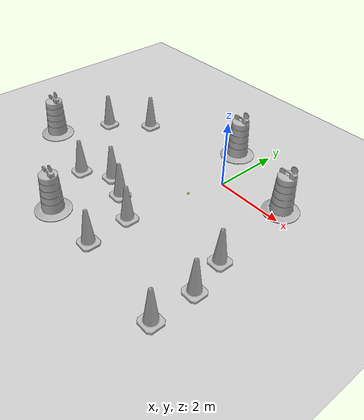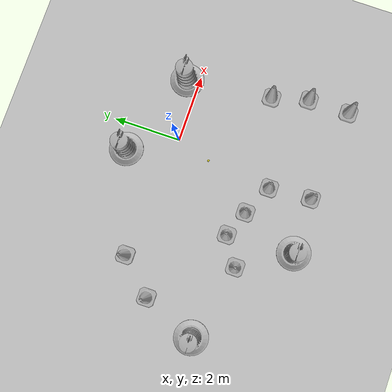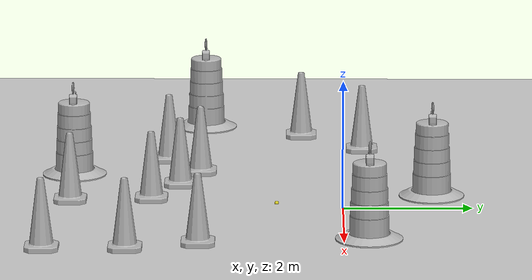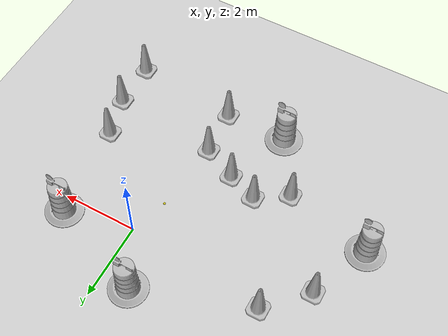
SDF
<sdf version="1.7">
 <world name="default">
  <light name="sun" type="directional">
   <pose>0 0 10 0 -0 0</pose>
   <diffuse>0.8 0.8 0.8 1</diffuse>
   <specular>0.2 0.2 0.2 1</specular>
   <attenuation>
    <range>1000</range>
    <constant>0.9</constant>
    <linear>0.01</linear>
    <quadratic>0.001</quadratic>
   </attenuation>
   <direction>-0.5 0.1 -0.9</direction>
   <spot><inner_angle>0</inner_angle><outer_angle>0</outer_angle><falloff>0</falloff></spot>
  </light>
  <model name="ground_plane">
   <static>1</static>
   <link name="link">
    <collision name="collision">
     <geometry><plane><normal>0 0 1</normal><size>100 100</size></plane></geometry>
     <surface>
      <contact><collide_bitmask>65535</collide_bitmask></contact>
      <friction><ode><mu>100</mu><mu2>50</mu2></ode></friction>
     </surface>
    </collision>
    <visual name="visual">
     <cast_shadows>0</cast_shadows>
     <geometry><plane><normal>0 0 1</normal><size>100 100</size></plane></geometry>
     <material>
      <script><uri>file://media/materials/scripts/gazebo.material</uri><name>Gazebo/Grey</name></script>
     </material>
    </visual>
   </link>
  </model>
  <gravity>0 0 -9.8</gravity>
  <magnetic_field>6e-06 2.3e-05 -4.2e-05</magnetic_field>
  <atmosphere type="adiabatic"/>
  <physics type="ode">
   <max_step_size>0.001</max_step_size>
   <real_time_factor>1</real_time_factor>
   <real_time_update_rate>1000</real_time_update_rate>
  </physics>
  <scene><ambient>0.4 0.4 0.4 1</ambient><background>0.7 0.7 0.7 1</background><shadows>1</shadows></scene>
  <spherical_coordinates>
   <surface_model>EARTH_WGS84</surface_model>
   <latitude_deg>0</latitude_deg>
   <longitude_deg>0</longitude_deg>
   <elevation>0</elevation>
   <heading_deg>0</heading_deg>
  </spherical_coordinates>
  <model name="Construction Barrel">
   <link name="link">
    <inertial>
     <pose>0 0 0.4 0 -0 0</pose>
     <mass>500</mass>
     <inertia><ixx>51.2096</ixx><iyy>51.2096</iyy><izz>25</izz><ixy>0</ixy><ixz>0</ixz><iyz>0</iyz></inertia>
    </inertial>
    <collision name="collision">
     <geometry><mesh><uri>model://construction_barrel/meshes/construction_barrel.dae</uri></mesh></geometry>
    </collision>
    <visual name="visual">
     <geometry><mesh><uri>model://construction_barrel/meshes/construction_barrel.dae</uri></mesh></geometry>
    </visual>
   </link>
   <pose>-0.756325 1.39223 -2e-06 7e-06 -4e-06 -2.7e-05</pose>
  </model>
  <model name="Construction Barrel_0">
   <link name="link">
    <inertial>
     <pose>0 0 0.4 0 -0 0</pose>
     <mass>500</mass>
     <inertia><ixx>51.2096</ixx><iyy>51.2096</iyy><izz>25</izz><ixy>0</ixy><ixz>0</ixz><iyz>0</iyz></inertia>
    </inertial>
    <collision name="collision">
     <geometry><mesh><uri>model://construction_barrel/meshes/construction_barrel.dae</uri></mesh></geometry>
    </collision>
    <visual name="visual">
     <geometry><mesh><uri>model://construction_barrel/meshes/construction_barrel.dae</uri></mesh></geometry>
    </visual>
   </link>
   <pose>1.80013 0.377148 -0 0 0 -2.7e-05</pose>
  </model>
  <model name="Construction Cone">
   <link name="link">
    <collision name="collision">
     <geometry>
      <mesh><scale>10 10 10</scale><uri>model://construction_cone/meshes/construction_cone.dae</uri></mesh>
     </geometry>
    </collision>
    <visual name="visual">
     <geometry>
      <mesh><scale>10 10 10</scale><uri>model://construction_cone/meshes/construction_cone.dae</uri></mesh>
     </geometry>
    </visual>
    <inertial>
     <inertia><ixx>1</ixx><ixy>0</ixy><ixz>0</ixz><iyy>1</iyy><iyz>0</iyz><izz>1</izz></inertia>
     <mass>1</mass>
    </inertial>
   </link>
   <pose>-2.19745 -2.25046 -0 0 -1e-06 0</pose>
  </model>
  <model name="Construction Cone_0">
   <link name="link">
    <collision name="collision">
     <geometry>
      <mesh><scale>10 10 10</scale><uri>model://construction_cone/meshes/construction_cone.dae</uri></mesh>
     </geometry>
    </collision>
    <visual name="visual">
     <geometry>
      <mesh><scale>10 10 10</scale><uri>model://construction_cone/meshes/construction_cone.dae</uri></mesh>
     </geometry>
    </visual>
    <inertial>
     <inertia><ixx>1</ixx><ixy>0</ixy><ixz>0</ixz><iyy>1</iyy><iyz>0</iyz><izz>1</izz></inertia>
     <mass>1</mass>
    </inertial>
   </link>
   <pose>-1.40494 -2.55135 -0 0 -1e-06 0</pose>
  </model>
  <model name="Construction Cone_1">
   <link name="link">
    <collision name="collision">
     <geometry>
      <mesh><scale>10 10 10</scale><uri>model://construction_cone/meshes/construction_cone.dae</uri></mesh>
     </geometry>
    </collision>
    <visual name="visual">
     <geometry>
      <mesh><scale>10 10 10</scale><uri>model://construction_cone/meshes/construction_cone.dae</uri></mesh>
     </geometry>
    </visual>
    <inertial>
     <inertia><ixx>1</ixx><ixy>0</ixy><ixz>0</ixz><iyy>1</iyy><iyz>0</iyz><izz>1</izz></inertia>
     <mass>1</mass>
    </inertial>
   </link>
   <pose>-0.501986 -2.9745 -0 0 -1e-06 0</pose>
  </model>
  <model name="Construction Cone_2">
   <link name="link">
    <collision name="collision">
     <geometry>
      <mesh><scale>10 10 10</scale><uri>model://construction_cone/meshes/construction_cone.dae</uri></mesh>
     </geometry>
    </collision>
    <visual name="visual">
     <geometry>
      <mesh><scale>10 10 10</scale><uri>model://construction_cone/meshes/construction_cone.dae</uri></mesh>
     </geometry>
    </visual>
    <inertial>
     <inertia><ixx>1</ixx><ixy>0</ixy><ixz>0</ixz><iyy>1</iyy><iyz>0</iyz><izz>1</izz></inertia>
     <mass>1</mass>
    </inertial>
   </link>
   <pose>2.09724 -2.18232 -0 0 -1e-06 0</pose>
  </model>
  <model name="Construction Cone_3">
   <link name="link">
    <collision name="collision">
     <geometry>
      <mesh><scale>10 10 10</scale><uri>model://construction_cone/meshes/construction_cone.dae</uri></mesh>
     </geometry>
    </collision>
    <visual name="visual">
     <geometry>
      <mesh><scale>10 10 10</scale><uri>model://construction_cone/meshes/construction_cone.dae</uri></mesh>
     </geometry>
    </visual>
    <inertial>
     <inertia><ixx>1</ixx><ixy>0</ixy><ixz>0</ixz><iyy>1</iyy><iyz>0</iyz><izz>1</izz></inertia>
     <mass>1</mass>
    </inertial>
   </link>
   <pose>-3.69879 0.345038 -0 0 -1e-06 0</pose>
  </model>
  <model name="Construction Cone_4">
   <link name="link">
    <collision name="collision">
     <geometry>
      <mesh><scale>10 10 10</scale><uri>model://construction_cone/meshes/construction_cone.dae</uri></mesh>
     </geometry>
    </collision>
    <visual name="visual">
     <geometry>
      <mesh><scale>10 10 10</scale><uri>model://construction_cone/meshes/construction_cone.dae</uri></mesh>
     </geometry>
    </visual>
    <inertial>
     <inertia><ixx>1</ixx><ixy>0</ixy><ixz>0</ixz><iyy>1</iyy><iyz>0</iyz><izz>1</izz></inertia>
     <mass>1</mass>
    </inertial>
   </link>
   <pose>-0.406438 -4.23374 -1e-05 0 -0 0</pose>
  </model>
  <model name="Construction Cone_5">
   <link name="link">
    <collision name="collision">
     <geometry>
      <mesh><scale>10 10 10</scale><uri>model://construction_cone/meshes/construction_cone.dae</uri></mesh>
     </geometry>
    </collision>
    <visual name="visual">
     <geometry>
      <mesh><scale>10 10 10</scale><uri>model://construction_cone/meshes/construction_cone.dae</uri></mesh>
     </geometry>
    </visual>
    <inertial>
     <inertia><ixx>1</ixx><ixy>0</ixy><ixz>0</ixz><iyy>1</iyy><iyz>0</iyz><izz>1</izz></inertia>
     <mass>1</mass>
    </inertial>
   </link>
   <pose>2.38815 -3.2576 -0 0 -1e-06 0</pose>
  </model>
  <model name="Construction Cone_6">
   <link name="link">
    <collision name="collision">
     <geometry>
      <mesh><scale>10 10 10</scale><uri>model://construction_cone/meshes/construction_cone.dae</uri></mesh>
     </geometry>
    </collision>
    <visual name="visual">
     <geometry>
      <mesh><scale>10 10 10</scale><uri>model://construction_cone/meshes/construction_cone.dae</uri></mesh>
     </geometry>
    </visual>
    <inertial>
     <inertia><ixx>1</ixx><ixy>0</ixy><ixz>0</ixz><iyy>1</iyy><iyz>0</iyz><izz>1</izz></inertia>
     <mass>1</mass>
    </inertial>
   </link>
   <pose>2.39316 -4.49605 -0 0 -0 0</pose>
  </model>
  <model name="Construction Cone_7">
   <link name="link">
    <collision name="collision">
     <geometry>
      <mesh><scale>10 10 10</scale><uri>model://construction_cone/meshes/construction_cone.dae</uri></mesh>
     </geometry>
    </collision>
    <visual name="visual">
     <geometry>
      <mesh><scale>10 10 10</scale><uri>model://construction_cone/meshes/construction_cone.dae</uri></mesh>
     </geometry>
    </visual>
    <inertial>
     <inertia><ixx>1</ixx><ixy>0</ixy><ixz>0</ixz><iyy>1</iyy><iyz>0</iyz><izz>1</izz></inertia>
     <mass>1</mass>
    </inertial>
   </link>
   <pose>-3.00495 -2.78053 -1e-05 0 -0 0</pose>
  </model>
  <model name="Construction Cone_8">
   <link name="link">
    <collision name="collision">
     <geometry>
      <mesh><scale>10 10 10</scale><uri>model://construction_cone/meshes/construction_cone.dae</uri></mesh>
     </geometry>
    </collision>
    <visual name="visual">
     <geometry>
      <mesh><scale>10 10 10</scale><uri>model://construction_cone/meshes/construction_cone.dae</uri></mesh>
     </geometry>
    </visual>
    <inertial>
     <inertia><ixx>1</ixx><ixy>0</ixy><ixz>0</ixz><iyy>1</iyy><iyz>0</iyz><izz>1</izz></inertia>
     <mass>1</mass>
    </inertial>
   </link>
   <pose>-4.64786 -0.646522 -0 0 -0 0</pose>
  </model>
  <model name="Construction Barrel_1">
   <link name="link">
    <inertial>
     <pose>0 0 0.4 0 -0 0</pose>
     <mass>500</mass>
     <inertia><ixx>51.2096</ixx><iyy>51.2096</iyy><izz>25</izz><ixy>0</ixy><ixz>0</ixz><iyz>0</iyz></inertia>
    </inertial>
    <collision name="collision">
     <geometry><mesh><uri>model://construction_barrel/meshes/construction_barrel.dae</uri></mesh></geometry>
    </collision>
    <visual name="visual">
     <geometry><mesh><uri>model://construction_barrel/meshes/construction_barrel.dae</uri></mesh></geometry>
    </visual>
   </link>
   <pose>-5.31084 -2.2371 -5e-06 -7e-06 -1e-05 -1.2e-05</pose>
  </model>
  <model name="Construction Barrel_2">
   <link name="link">
    <inertial>
     <pose>0 0 0.4 0 -0 0</pose>
     <mass>500</mass>
     <inertia><ixx>51.2096</ixx><iyy>51.2096</iyy><izz>25</izz><ixy>0</ixy><ixz>0</ixz><iyz>0</iyz></inertia>
    </inertial>
    <collision name="collision">
     <geometry><mesh><uri>model://construction_barrel/meshes/construction_barrel.dae</uri></mesh></geometry>
    </collision>
    <visual name="visual">
     <geometry><mesh><uri>model://construction_barrel/meshes/construction_barrel.dae</uri></mesh></geometry>
    </visual>
   </link>
   <pose>-2.07694 -4.262 -3e-06 -9e-06 -4e-06 -1.9e-05</pose>
  </model>
  <audio><device>default</device></audio>
  <model name="tennis_ball">
   <link name="link">
    <inertial>
     <mass>0.001</mass>
     <inertia><ixx>0.1</ixx><ixy>0</ixy><ixz>0</ixz><iyy>0.1</iyy><iyz>0</iyz><izz>0.1</izz></inertia>
    </inertial>
    <visual name="visual">
     <geometry><sphere><radius>0.033</radius></sphere></geometry>
     <material>
      <script><name>Gazebo/Yellow</name><uri>file://media/materials/scripts/gazebo.material</uri></script>
      <shader type="pixel"><normal_map>__default__</normal_map></shader>
      <ambient>0.973 0.894 0.361 1</ambient>
      <diffuse>0.965 0.827 0.176 1</diffuse>
      <specular>0.973 0.933 0.42 1</specular>
      <emissive>0.965 0.827 0.176 1</emissive>
      <lighting>1</lighting>
     </material>
    </visual>
    <collision name="collision">
     <geometry><sphere><radius>0.033</radius></sphere></geometry>
     <surface>
      <friction>
       <ode><mu>1</mu><mu2>1</mu2><fdir1>0 0 0</fdir1><slip1>0</slip1><slip2>0</slip2></ode>
       <torsional>
        <coefficient>1</coefficient>
        <patch_radius>0</patch_radius>
        <surface_radius>0</surface_radius>
        <use_patch_radius>1</use_patch_radius>
        <ode><slip>0</slip></ode>
       </torsional>
      </friction>
      <bounce><restitution_coefficient>0</restitution_coefficient><threshold>1e+06</threshold></bounce>
      <contact>
       <collide_without_contact>0</collide_without_contact>
       <collide_without_contact_bitmask>1</collide_without_contact_bitmask>
       <collide_bitmask>1</collide_bitmask>
       <ode>
        <soft_cfm>0</soft_cfm>
        <soft_erp>0.2</soft_erp>
        <kp>1e+13</kp>
        <kd>1</kd>
        <max_vel>0.01</max_vel>
        <min_depth>0</min_depth>
       </ode>
       <bullet>
        <split_impulse>1</split_impulse>
        <split_impulse_penetration_threshold>-0.01</split_impulse_penetration_threshold>
        <soft_cfm>0</soft_cfm>
        <soft_erp>0.2</soft_erp>
        <kp>1e+13</kp>
        <kd>1</kd>
       </bullet>
      </contact>
     </surface>
    </collision>
    <color rgba="0.0 1.0 0.0 0.0"/>
   </link>
   <static>0</static>
   <pose>-0.303893 -1.02268 0 0 -0 0</pose>
  </model>
 </world>
</sdf>
